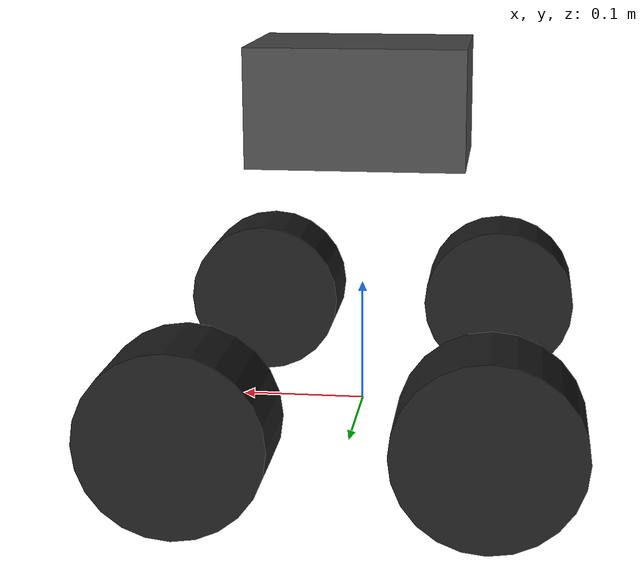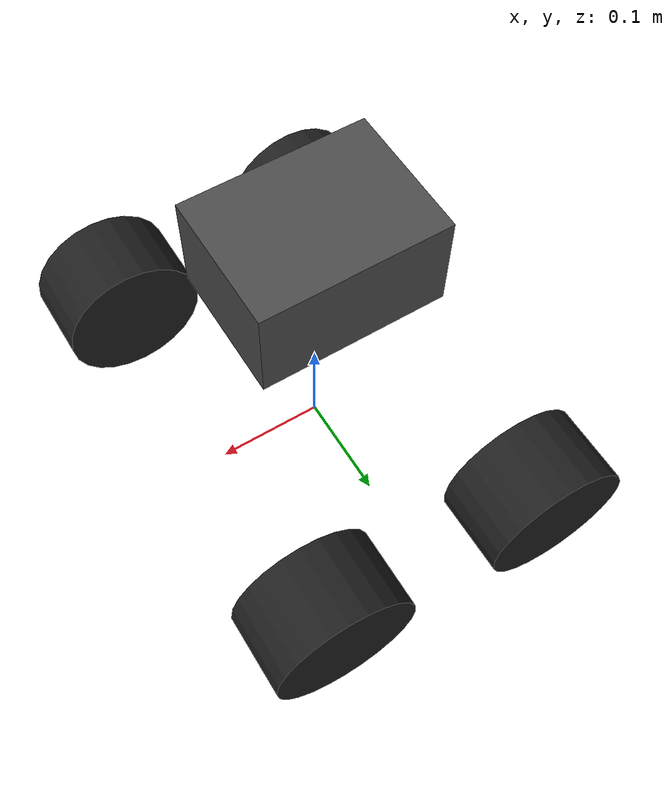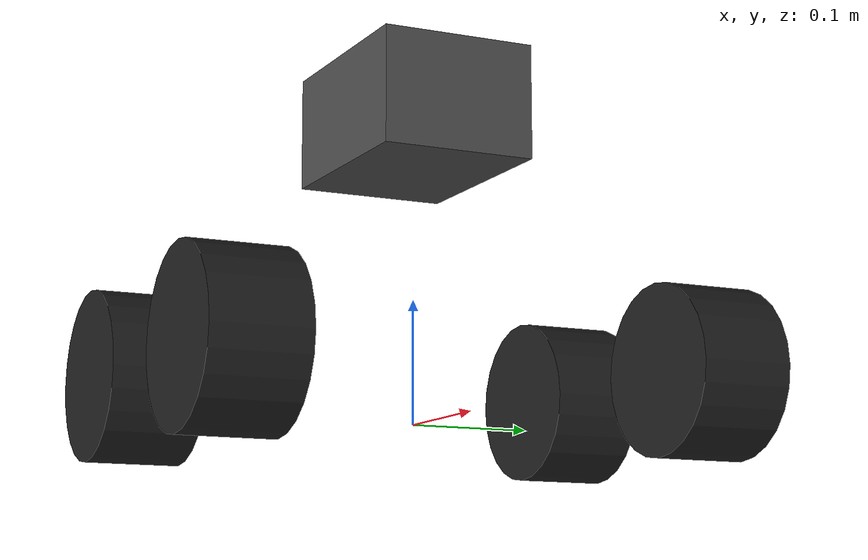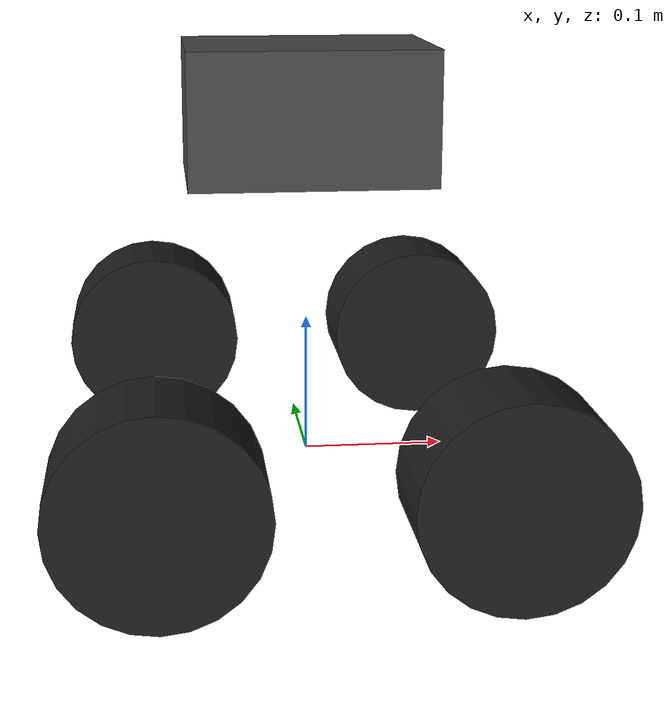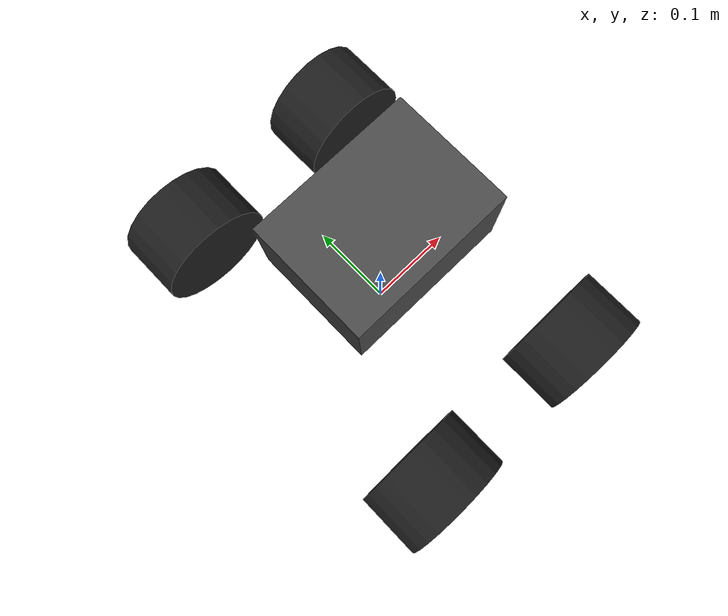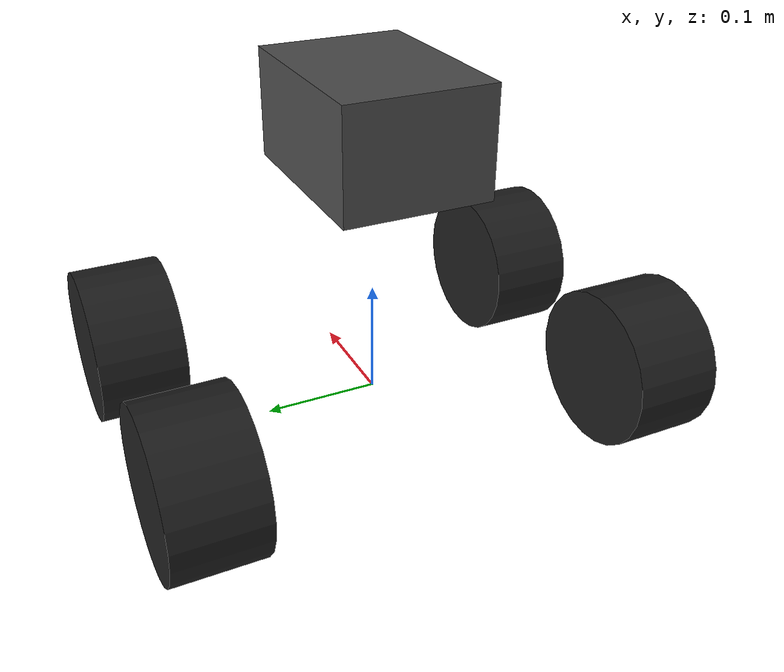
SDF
<?xml version="1.0"?>
<sdf version="1.9">
  <model name="gress_rover">
    <link name='base_link'>
      <pose>0 0 0 0 0 0</pose>
      <inertial>
        <pose degrees="true">0 0 0.25 90 0 90</pose>
        <mass>3.12</mass>
        <inertia>
          <ixx>0.033764</ixx>
          <ixy>0.0</ixy>
          <ixz>0.0</ixz>
          <iyy>0.050325</iyy>
          <iyz>0.0</iyz>
          <izz>0.020275</izz>
        </inertia>
      </inertial>
      <collision name='odom_fixed_joint_lump__base_link_collision'>
        <pose degrees="true">0 0 0.25 0 90 0</pose>
        <geometry>
          <box>
            <size>0.093 0.126 0.17</size>
          </box>
        </geometry>
      </collision>
      <visual name='odom_fixed_joint_lump__base_link_visual'>
        <pose degrees="true">0 0 0.25 0 90 0</pose>
        <geometry>
          <box>
            <size>0.093 0.126 0.17</size>
          </box>
        </geometry>
        <material>
          <script>
            <name>Gazebo/DarkGrey</name>
            <uri>file://media/materials/scripts/gazebo.material</uri>
          </script>
          <diffuse>1 1 1 1</diffuse>
          <specular>1 1 1 1</specular>
        </material>
      </visual>

      <sensor name="imu_sensor" type="imu">
        <pose degrees="true">0 0 0 180 0 0</pose>
        <always_on>1</always_on>
        <update_rate>1000</update_rate>
        <visualize>true</visualize>
      </sensor>
    </link>

    <link name='lf_wheel_link'>
      <pose>0.11 0.195 0.0392 0 -0 0</pose>
      <inertial>
        <pose degrees="true">0 0 0 90 0 90</pose>
        <mass>0.670</mass>
        <inertia>
          <ixx>0.00287</ixx>
          <ixy>0</ixy>
          <ixz>0</ixz>
          <iyy>0.001797</iyy>
          <iyz>0</iyz>
          <izz>0.001797</izz>
        </inertia>
      </inertial>
      <collision name='lf_wheel_link_collision'>
        <pose>0 0 0 1.57079632679 0 0</pose>
        <geometry>
          <cylinder>
            <radius>0.0686</radius>
            <length>0.0762</length>
          </cylinder>
        </geometry>
        <max_contacts>1</max_contacts>
        <surface>
          <friction>
            <torsional>
              <coefficient>1</coefficient>
              <use_patch_radius>1</use_patch_radius>
              <surface_radius>0.0686</surface_radius>
            </torsional>
            <ode>
              <mu>0.7</mu>
              <mu2>0.7</mu2>
              <fdir1>1 0 0</fdir1>
              <fdir2>0 1 0</fdir2>
            </ode>
          </friction>
          <bounce>
            <restitution_coefficient>0</restitution_coefficient>
            <threshold>1e6</threshold>
          </bounce>
          <contact>
            <ode>
              <min_depth>0.001</min_depth>
              <max_vel>0.0</max_vel>
              <kp>1.0e6</kp>
              <kd>100.0</kd>
            </ode>
          </contact>
        </surface>
      </collision>
      <visual name='lf_wheel_link_visual'>
        <pose>0 0 0 1.57079632679 0 0</pose>
        <geometry>
          <cylinder>
            <radius>0.0686</radius>
            <length>0.0762</length>
          </cylinder>
        </geometry>
        <material>
          <script>
            <name>Gazebo/Black</name>
            <uri>file://media/materials/scripts/gazebo.material</uri>
          </script>
          <diffuse>0.5 0.5 0.5 1</diffuse>
          <specular>0.5 0.5 0.5 1</specular>
        </material>
      </visual>
    </link>
    <joint name='motor_0' type='revolute'>
      <child>lf_wheel_link</child>
      <parent>base_link</parent>
      <axis>
        <xyz>0 1 0</xyz>
        <limit>
          <lower>-1e+16</lower>
          <upper>1e+16</upper>
          <effort>5</effort>
          <velocity>10000</velocity>
        </limit>
        <dynamics>
          <damping>0.01</damping>
        </dynamics>
      </axis>
    </joint>

    <link name='lb_wheel_link'>
      <pose>-0.11 0.195 0.0392 0 -0 0</pose>
      <inertial>
        <pose degrees="true">0 0 0 90 0 90</pose>
        <mass>0.670</mass>
        <inertia>
          <ixx>0.00287</ixx>
          <ixy>0</ixy>
          <ixz>0</ixz>
          <iyy>0.001797</iyy>
          <iyz>0</iyz>
          <izz>0.001797</izz>
        </inertia>
      </inertial>
      <collision name='lb_wheel_link_collision'>
        <pose>0 0 0 1.57079632679 0 0</pose>
        <geometry>
          <cylinder>
            <radius>0.0686</radius>
            <length>0.0762</length>
          </cylinder>
        </geometry>
        <max_contacts>1</max_contacts>
        <surface>
          <friction>
            <torsional>
              <coefficient>1</coefficient>
              <use_patch_radius>1</use_patch_radius>
              <surface_radius>0.0686</surface_radius>
            </torsional>
            <ode>
              <mu>0.7</mu>
              <mu2>0.7</mu2>
              <fdir1>1 0 0</fdir1>
              <fdir2>0 1 0</fdir2>
            </ode>
          </friction>
          <bounce>
            <restitution_coefficient>0</restitution_coefficient>
            <threshold>1e6</threshold>
          </bounce>
          <contact>
            <ode>
              <min_depth>0.001</min_depth>
              <max_vel>0.0</max_vel>
              <kp>1.0e6</kp>
              <kd>100.0</kd>
            </ode>
          </contact>
        </surface>
      </collision>
      <visual name='lb_wheel_link_visual'>
        <pose>0 0 0 1.57079632679 0 0</pose>
        <geometry>
          <cylinder>
            <radius>0.0686</radius>
            <length>0.0762</length>
          </cylinder>
        </geometry>
        <material>
          <script>
            <name>Gazebo/Black</name>
            <uri>file://media/materials/scripts/gazebo.material</uri>
          </script>
          <diffuse>0.5 0.5 0.5 1</diffuse>
          <specular>0.5 0.5 0.5 1</specular>
        </material>
      </visual>
    </link>
    <joint name='motor_1' type='revolute'>
      <child>lb_wheel_link</child>
      <parent>base_link</parent>
      <axis>
        <xyz>0 1 0</xyz>
        <limit>
          <lower>-1e+16</lower>
          <upper>1e+16</upper>
          <effort>5</effort>
          <velocity>10000</velocity>
        </limit>
        <dynamics>
          <damping>0.01</damping>
        </dynamics>
      </axis>
    </joint>

    <link name='rf_wheel_link'>
      <pose>0.11 -0.195 0.0392 0 -0 0</pose>
      <inertial>
        <pose degrees="true">0 0 0 90 0 90</pose>
        <mass>0.670</mass>
        <inertia>
          <ixx>0.00287</ixx>
          <ixy>0</ixy>
          <ixz>0</ixz>
          <iyy>0.001797</iyy>
          <iyz>0</iyz>
          <izz>0.001797</izz>
        </inertia>
      </inertial>
      <collision name='rf_wheel_link_collision'>
        <pose>0 0 0 1.57079632679 0 0</pose>
        <geometry>
          <cylinder>
            <radius>0.0686</radius>
            <length>0.0762</length>
          </cylinder>
        </geometry>
        <max_contacts>1</max_contacts>
        <surface>
          <friction>
            <torsional>
              <coefficient>1</coefficient>
              <use_patch_radius>1</use_patch_radius>
              <surface_radius>0.0686</surface_radius>
            </torsional>
            <ode>
              <mu>0.7</mu>
              <mu2>0.7</mu2>
              <fdir1>1 0 0</fdir1>
              <fdir2>0 1 0</fdir2>
            </ode>
          </friction>
          <bounce>
            <restitution_coefficient>0</restitution_coefficient>
            <threshold>1e6</threshold>
          </bounce>
          <contact>
            <ode>
              <min_depth>0.001</min_depth>
              <max_vel>0.0</max_vel>
              <kp>1.0e6</kp>
              <kd>100.0</kd>
            </ode>
          </contact>
        </surface>
      </collision>
      <visual name='rf_wheel_link_visual'>
        <pose>0 0 0 1.57079632679 0 0</pose>
        <geometry>
          <cylinder>
            <radius>0.0686</radius>
            <length>0.0762</length>
          </cylinder>
        </geometry>
        <material>
          <script>
            <name>Gazebo/Black</name>
            <uri>file://media/materials/scripts/gazebo.material</uri>
          </script>
          <diffuse>0.5 0.5 0.5 1</diffuse>
          <specular>0.5 0.5 0.5 1</specular>
        </material>
      </visual>
    </link>
    <joint name='motor_2' type='revolute'>
      <child>rf_wheel_link</child>
      <parent>base_link</parent>
      <axis>
        <xyz>0 1 0</xyz>
        <limit>
          <lower>-1e+16</lower>
          <upper>1e+16</upper>
          <effort>5</effort>
          <velocity>10000</velocity>
        </limit>
        <dynamics>
          <damping>0.01</damping>
        </dynamics>
      </axis>
    </joint>

    <link name='rb_wheel_link'>
      <pose>-0.11 -0.195 0.0392 0 -0 0</pose>
      <inertial>
        <pose degrees="true">0 0 0 90 0 90</pose>
        <mass>0.670</mass>
        <inertia>
          <ixx>0.00287</ixx>
          <ixy>0</ixy>
          <ixz>0</ixz>
          <iyy>0.001797</iyy>
          <iyz>0</iyz>
          <izz>0.001797</izz>
        </inertia>
      </inertial>
      <collision name='rb_wheel_link_collision'>
        <pose>0 0 0 1.57079632679 0 0</pose>
        <geometry>
          <cylinder>
            <radius>0.0686</radius>
            <length>0.0762</length>
          </cylinder>
        </geometry>
        <max_contacts>1</max_contacts>
        <surface>
          <friction>
            <torsional>
              <coefficient>1</coefficient>
              <use_patch_radius>1</use_patch_radius>
              <surface_radius>0.0686</surface_radius>
            </torsional>
            <ode>
              <mu>0.7</mu>
              <mu2>0.7</mu2>
              <fdir1>1 0 0</fdir1>
              <fdir2>0 1 0</fdir2>
            </ode>
          </friction>
          <bounce>
            <restitution_coefficient>0</restitution_coefficient>
            <threshold>1e6</threshold>
          </bounce>
          <contact>
            <ode>
              <min_depth>0.001</min_depth>
              <kp>1e8</kp>
            </ode>
          </contact>
        </surface>
      </collision>
      <visual name='rb_wheel_link_visual'>
        <pose>0 0 0 1.57079632679 0 0</pose>
        <geometry>
          <cylinder>
            <radius>0.0686</radius>
            <length>0.0762</length>
          </cylinder>
        </geometry>
        <material>
          <script>
            <name>Gazebo/Black</name>
            <uri>file://media/materials/scripts/gazebo.material</uri>
          </script>
          <diffuse>0.5 0.5 0.5 1</diffuse>
          <specular>0.5 0.5 0.5 1</specular>
        </material>
      </visual>
    </link>
    <joint name='motor_3' type='revolute'>
      <child>rb_wheel_link</child>
      <parent>base_link</parent>
      <axis>
        <xyz>0 1 0</xyz>
        <limit>
          <lower>-1e+16</lower>
          <upper>1e+16</upper>
          <effort>5</effort>
          <velocity>10000</velocity>
        </limit>
        <dynamics>
          <damping>0.01</damping>
        </dynamics>
      </axis>
    </joint>

    <!-- plugins -->
    <plugin filename="gz-sim-joint-state-publisher-system"
      name="gz::sim::systems::JointStatePublisher">
    </plugin>
    <plugin
      filename="gz-sim-odometry-publisher-system"
      name="gz::sim::systems::OdometryPublisher">
      <odom_frame>odom</odom_frame>
      <robot_base_frame>base_link</robot_base_frame>
      <dimensions>3</dimensions>
    </plugin>

    <plugin name="ArduPilotPlugin"
      filename="ArduPilotPlugin">
      <fdm_addr>127.0.0.1</fdm_addr>
      <fdm_port_in>9002</fdm_port_in>
      <connectionTimeoutMaxCount>5</connectionTimeoutMaxCount>
      <lock_step>1</lock_step>
      <have_32_channels>0</have_32_channels>
      <modelXYZToAirplaneXForwardZDown degrees="true">0 0 0 180 0 0</modelXYZToAirplaneXForwardZDown>
      <gazeboXYZToNED degrees="true">0 0 0 180 0 90</gazeboXYZToNED>
      <imuName>base_link::imu_sensor</imuName>

      <control channel="0">
        <jointName>motor_0</jointName>
        <useForce>1</useForce>
        <multiplier>46.3</multiplier>
        <offset>-0.5</offset>
        <servo_min>1000</servo_min>
        <servo_max>2000</servo_max>
        <type>VELOCITY</type>
        <p_gain>0.2</p_gain>
        <i_gain>0.06</i_gain>
        <d_gain>0.0001</d_gain>
        <i_max>1</i_max>
        <i_min>-1</i_min>
        <cmd_max>100.0</cmd_max>
        <cmd_min>-100.0</cmd_min>
      </control>

      <control channel="0">
        <jointName>motor_1</jointName>
        <useForce>1</useForce>
        <multiplier>46.3</multiplier>
        <offset>-0.5</offset>
        <servo_min>1000</servo_min>
        <servo_max>2000</servo_max>
        <type>VELOCITY</type>
        <p_gain>0.2</p_gain>
        <i_gain>0.06</i_gain>
        <d_gain>0.0001</d_gain>
        <i_max>1</i_max>
        <i_min>-1</i_min>
        <cmd_max>100.0</cmd_max>
        <cmd_min>-100.0</cmd_min>
      </control>

      <control channel="2">
        <jointName>motor_2</jointName>
        <useForce>1</useForce>
        <multiplier>46.3</multiplier>
        <offset>-0.5</offset>
        <servo_min>1000</servo_min>
        <servo_max>2000</servo_max>
        <type>VELOCITY</type>
        <p_gain>0.2</p_gain>
        <i_gain>0.06</i_gain>
        <d_gain>0.0001</d_gain>
        <i_max>1</i_max>
        <i_min>-1</i_min>
        <cmd_max>100.0</cmd_max>
        <cmd_min>-100.0</cmd_min>
      </control>

      <control channel="2">
        <jointName>motor_3</jointName>
        <useForce>1</useForce>
        <multiplier>46.3</multiplier>
        <offset>-0.5</offset>
        <servo_min>1000</servo_min>
        <servo_max>2000</servo_max>
        <type>VELOCITY</type>
        <p_gain>0.2</p_gain>
        <i_gain>0.06</i_gain>
        <d_gain>0.0001</d_gain>
        <i_max>1</i_max>
        <i_min>-1</i_min>
        <cmd_max>100.0</cmd_max>
        <cmd_min>-100.0</cmd_min>
      </control>
    </plugin>

  </model>
</sdf>
